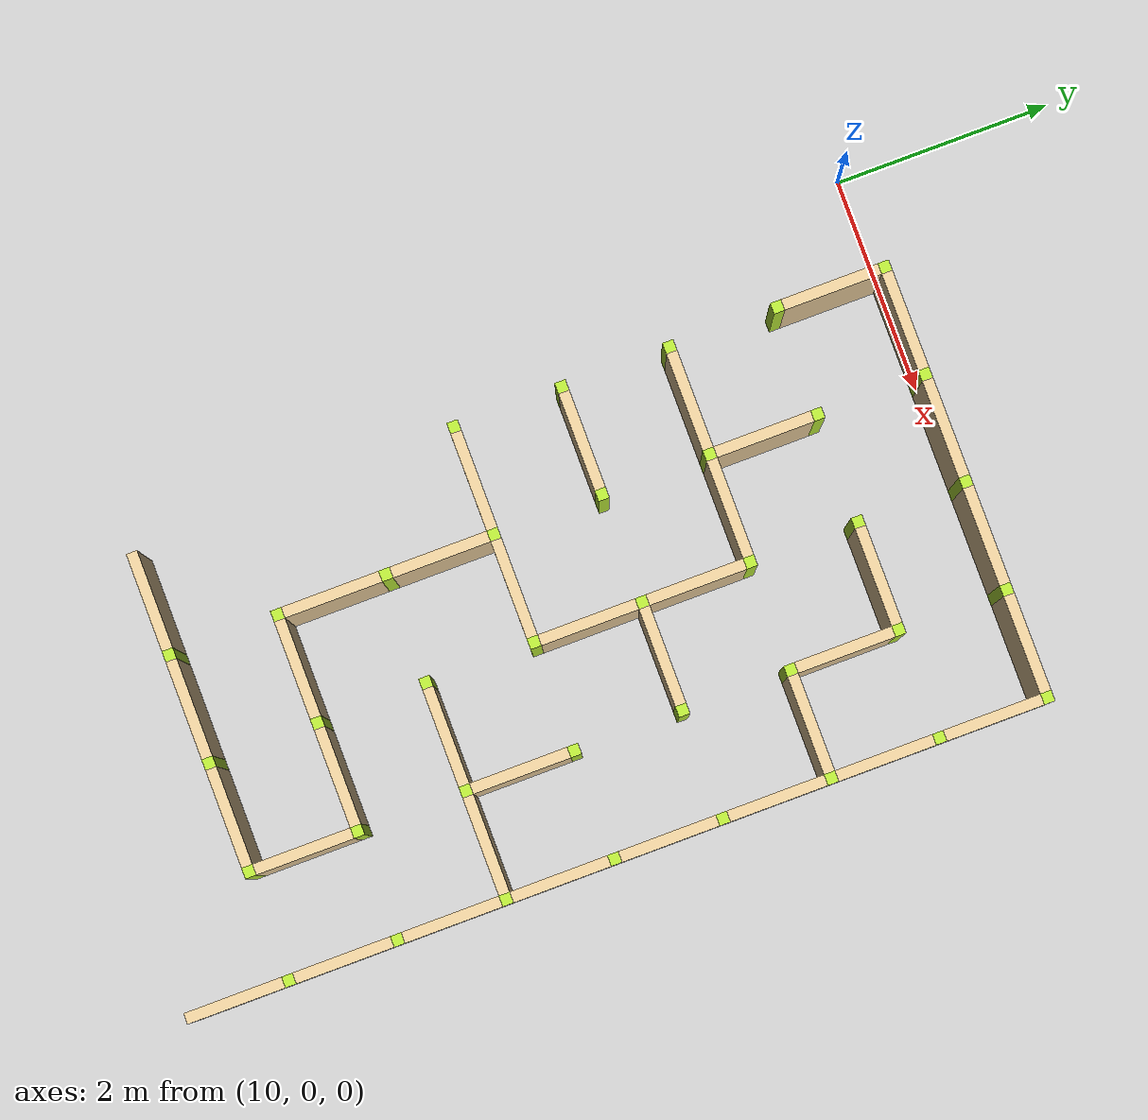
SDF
<sdf version="1.4">
 <world name="maze_world">
  <model name="ground">
   <static>true</static>
   <link name="ground_link">
    <collision name="collision1"><geometry><plane><normal>0 0 1</normal></plane></geometry></collision>
    <visual name="visual1"><geometry><plane><normal>0 0 1</normal><size>100 100</size></plane></geometry></visual>
   </link>
  </model>
  <model name="Untitled">
   <link name="Wall_11_0_h">
    <collision name="Wall_0_Collision">
     <geometry><box><size>0.9 0.1 1.5</size></box></geometry>
     <pose>0 0 0.75 0 -0 0</pose>
    </collision>
    <visual name="Wall_0_Visual">
     <pose>0 0 0.75 0 -0 0</pose>
     <geometry><box><size>0.9 0.1 1.5</size></box></geometry>
     <material>
      <script><uri>file://media/materials/scripts/gazebo.material</uri><name>Gazebo/Grey</name></script>
      <ambient>0.921569 0.807843 0.615686 1</ambient>
     </material>
     <meta><layer>0</layer></meta>
    </visual>
    <pose>11.5 0 0 0 -0 0</pose>
   </link>
   <link name="Wall_11_0_v">
    <collision name="Wall_0_Collision">
     <geometry><box><size>0.9 0.1 1.5</size></box></geometry>
     <pose>0 0 0.75 0 -0 0</pose>
    </collision>
    <visual name="Wall_0_Visual">
     <pose>0 0 0.75 0 -0 0</pose>
     <geometry><box><size>0.9 0.1 1.5</size></box></geometry>
     <material>
      <script><uri>file://media/materials/scripts/gazebo.material</uri><name>Gazebo/Grey</name></script>
      <ambient>0.921569 0.807843 0.615686 1</ambient>
     </material>
     <meta><layer>0</layer></meta>
    </visual>
    <pose>11 -0.5 0 0 -0 1.5708</pose>
   </link>
   <link name="Joint_11_0">
    <collision name="Wall_2_Collision">
     <geometry><box><size>0.1 0.1 1.5</size></box></geometry>
     <pose>0 0 0.75 0 -0 0</pose>
    </collision>
    <visual name="Wall_2_Visual">
     <pose>0 0 0.75 0 -0 0</pose>
     <geometry><box><size>0.1 0.1 1.5</size></box></geometry>
     <material>
      <script><uri>file://media/materials/scripts/gazebo.material</uri><name>Gazebo/Grey</name></script>
      <ambient>0.721569 0.907843 0.215686 1</ambient>
     </material>
     <meta><layer>0</layer></meta>
    </visual>
    <pose>11 0 0 0 -0 0</pose>
   </link>
   <link name="Wall_12_0_h">
    <collision name="Wall_0_Collision">
     <geometry><box><size>0.9 0.1 1.5</size></box></geometry>
     <pose>0 0 0.75 0 -0 0</pose>
    </collision>
    <visual name="Wall_0_Visual">
     <pose>0 0 0.75 0 -0 0</pose>
     <geometry><box><size>0.9 0.1 1.5</size></box></geometry>
     <material>
      <script><uri>file://media/materials/scripts/gazebo.material</uri><name>Gazebo/Grey</name></script>
      <ambient>0.921569 0.807843 0.615686 1</ambient>
     </material>
     <meta><layer>0</layer></meta>
    </visual>
    <pose>12.5 0 0 0 -0 0</pose>
   </link>
   <link name="Joint_12_0">
    <collision name="Wall_2_Collision">
     <geometry><box><size>0.1 0.1 1.5</size></box></geometry>
     <pose>0 0 0.75 0 -0 0</pose>
    </collision>
    <visual name="Wall_2_Visual">
     <pose>0 0 0.75 0 -0 0</pose>
     <geometry><box><size>0.1 0.1 1.5</size></box></geometry>
     <material>
      <script><uri>file://media/materials/scripts/gazebo.material</uri><name>Gazebo/Grey</name></script>
      <ambient>0.721569 0.907843 0.215686 1</ambient>
     </material>
     <meta><layer>0</layer></meta>
    </visual>
    <pose>12 0 0 0 -0 0</pose>
   </link>
   <link name="Wall_13_0_h">
    <collision name="Wall_0_Collision">
     <geometry><box><size>0.9 0.1 1.5</size></box></geometry>
     <pose>0 0 0.75 0 -0 0</pose>
    </collision>
    <visual name="Wall_0_Visual">
     <pose>0 0 0.75 0 -0 0</pose>
     <geometry><box><size>0.9 0.1 1.5</size></box></geometry>
     <material>
      <script><uri>file://media/materials/scripts/gazebo.material</uri><name>Gazebo/Grey</name></script>
      <ambient>0.921569 0.807843 0.615686 1</ambient>
     </material>
     <meta><layer>0</layer></meta>
    </visual>
    <pose>13.5 0 0 0 -0 0</pose>
   </link>
   <link name="Joint_13_0">
    <collision name="Wall_2_Collision">
     <geometry><box><size>0.1 0.1 1.5</size></box></geometry>
     <pose>0 0 0.75 0 -0 0</pose>
    </collision>
    <visual name="Wall_2_Visual">
     <pose>0 0 0.75 0 -0 0</pose>
     <geometry><box><size>0.1 0.1 1.5</size></box></geometry>
     <material>
      <script><uri>file://media/materials/scripts/gazebo.material</uri><name>Gazebo/Grey</name></script>
      <ambient>0.721569 0.907843 0.215686 1</ambient>
     </material>
     <meta><layer>0</layer></meta>
    </visual>
    <pose>13 0 0 0 -0 0</pose>
   </link>
   <link name="Wall_14_0_h">
    <collision name="Wall_0_Collision">
     <geometry><box><size>0.9 0.1 1.5</size></box></geometry>
     <pose>0 0 0.75 0 -0 0</pose>
    </collision>
    <visual name="Wall_0_Visual">
     <pose>0 0 0.75 0 -0 0</pose>
     <geometry><box><size>0.9 0.1 1.5</size></box></geometry>
     <material>
      <script><uri>file://media/materials/scripts/gazebo.material</uri><name>Gazebo/Grey</name></script>
      <ambient>0.921569 0.807843 0.615686 1</ambient>
     </material>
     <meta><layer>0</layer></meta>
    </visual>
    <pose>14.5 0 0 0 -0 0</pose>
   </link>
   <link name="Joint_14_0">
    <collision name="Wall_2_Collision">
     <geometry><box><size>0.1 0.1 1.5</size></box></geometry>
     <pose>0 0 0.75 0 -0 0</pose>
    </collision>
    <visual name="Wall_2_Visual">
     <pose>0 0 0.75 0 -0 0</pose>
     <geometry><box><size>0.1 0.1 1.5</size></box></geometry>
     <material>
      <script><uri>file://media/materials/scripts/gazebo.material</uri><name>Gazebo/Grey</name></script>
      <ambient>0.721569 0.907843 0.215686 1</ambient>
     </material>
     <meta><layer>0</layer></meta>
    </visual>
    <pose>14 0 0 0 -0 0</pose>
   </link>
   <link name="Wall_15_0_v">
    <collision name="Wall_0_Collision">
     <geometry><box><size>0.9 0.1 1.5</size></box></geometry>
     <pose>0 0 0.75 0 -0 0</pose>
    </collision>
    <visual name="Wall_0_Visual">
     <pose>0 0 0.75 0 -0 0</pose>
     <geometry><box><size>0.9 0.1 1.5</size></box></geometry>
     <material>
      <script><uri>file://media/materials/scripts/gazebo.material</uri><name>Gazebo/Grey</name></script>
      <ambient>0.921569 0.807843 0.615686 1</ambient>
     </material>
     <meta><layer>0</layer></meta>
    </visual>
    <pose>15 -0.5 0 0 -0 1.5708</pose>
   </link>
   <link name="Joint_15_0">
    <collision name="Wall_2_Collision">
     <geometry><box><size>0.1 0.1 1.5</size></box></geometry>
     <pose>0 0 0.75 0 -0 0</pose>
    </collision>
    <visual name="Wall_2_Visual">
     <pose>0 0 0.75 0 -0 0</pose>
     <geometry><box><size>0.1 0.1 1.5</size></box></geometry>
     <material>
      <script><uri>file://media/materials/scripts/gazebo.material</uri><name>Gazebo/Grey</name></script>
      <ambient>0.721569 0.907843 0.215686 1</ambient>
     </material>
     <meta><layer>0</layer></meta>
    </visual>
    <pose>15 0 0 0 -0 0</pose>
   </link>
   <link name="Joint_11_-1">
    <collision name="Wall_2_Collision">
     <geometry><box><size>0.1 0.1 1.5</size></box></geometry>
     <pose>0 0 0.75 0 -0 0</pose>
    </collision>
    <visual name="Wall_2_Visual">
     <pose>0 0 0.75 0 -0 0</pose>
     <geometry><box><size>0.1 0.1 1.5</size></box></geometry>
     <material>
      <script><uri>file://media/materials/scripts/gazebo.material</uri><name>Gazebo/Grey</name></script>
      <ambient>0.721569 0.907843 0.215686 1</ambient>
     </material>
     <meta><layer>0</layer></meta>
    </visual>
    <pose>11 -1 0 0 -0 0</pose>
   </link>
   <link name="Wall_12_1_v">
    <collision name="Wall_0_Collision">
     <geometry><box><size>0.9 0.1 1.5</size></box></geometry>
     <pose>0 0 0.75 0 -0 0</pose>
    </collision>
    <visual name="Wall_0_Visual">
     <pose>0 0 0.75 0 -0 0</pose>
     <geometry><box><size>0.9 0.1 1.5</size></box></geometry>
     <material>
      <script><uri>file://media/materials/scripts/gazebo.material</uri><name>Gazebo/Grey</name></script>
      <ambient>0.921569 0.807843 0.615686 1</ambient>
     </material>
     <meta><layer>0</layer></meta>
    </visual>
    <pose>12 -1.5 0 0 -0 1.5708</pose>
   </link>
   <link name="Joint_12_-1">
    <collision name="Wall_2_Collision">
     <geometry><box><size>0.1 0.1 1.5</size></box></geometry>
     <pose>0 0 0.75 0 -0 0</pose>
    </collision>
    <visual name="Wall_2_Visual">
     <pose>0 0 0.75 0 -0 0</pose>
     <geometry><box><size>0.1 0.1 1.5</size></box></geometry>
     <material>
      <script><uri>file://media/materials/scripts/gazebo.material</uri><name>Gazebo/Grey</name></script>
      <ambient>0.721569 0.907843 0.215686 1</ambient>
     </material>
     <meta><layer>0</layer></meta>
    </visual>
    <pose>12 -1 0 0 -0 0</pose>
   </link>
   <link name="Wall_13_1_h">
    <collision name="Wall_0_Collision">
     <geometry><box><size>0.9 0.1 1.5</size></box></geometry>
     <pose>0 0 0.75 0 -0 0</pose>
    </collision>
    <visual name="Wall_0_Visual">
     <pose>0 0 0.75 0 -0 0</pose>
     <geometry><box><size>0.9 0.1 1.5</size></box></geometry>
     <material>
      <script><uri>file://media/materials/scripts/gazebo.material</uri><name>Gazebo/Grey</name></script>
      <ambient>0.921569 0.807843 0.615686 1</ambient>
     </material>
     <meta><layer>0</layer></meta>
    </visual>
    <pose>13.5 -1 0 0 -0 0</pose>
   </link>
   <link name="Joint_13_-1">
    <collision name="Wall_2_Collision">
     <geometry><box><size>0.1 0.1 1.5</size></box></geometry>
     <pose>0 0 0.75 0 -0 0</pose>
    </collision>
    <visual name="Wall_2_Visual">
     <pose>0 0 0.75 0 -0 0</pose>
     <geometry><box><size>0.1 0.1 1.5</size></box></geometry>
     <material>
      <script><uri>file://media/materials/scripts/gazebo.material</uri><name>Gazebo/Grey</name></script>
      <ambient>0.721569 0.907843 0.215686 1</ambient>
     </material>
     <meta><layer>0</layer></meta>
    </visual>
    <pose>13 -1 0 0 -0 0</pose>
   </link>
   <link name="Wall_14_1_v">
    <collision name="Wall_0_Collision">
     <geometry><box><size>0.9 0.1 1.5</size></box></geometry>
     <pose>0 0 0.75 0 -0 0</pose>
    </collision>
    <visual name="Wall_0_Visual">
     <pose>0 0 0.75 0 -0 0</pose>
     <geometry><box><size>0.9 0.1 1.5</size></box></geometry>
     <material>
      <script><uri>file://media/materials/scripts/gazebo.material</uri><name>Gazebo/Grey</name></script>
      <ambient>0.921569 0.807843 0.615686 1</ambient>
     </material>
     <meta><layer>0</layer></meta>
    </visual>
    <pose>14 -1.5 0 0 -0 1.5708</pose>
   </link>
   <link name="Joint_14_-1">
    <collision name="Wall_2_Collision">
     <geometry><box><size>0.1 0.1 1.5</size></box></geometry>
     <pose>0 0 0.75 0 -0 0</pose>
    </collision>
    <visual name="Wall_2_Visual">
     <pose>0 0 0.75 0 -0 0</pose>
     <geometry><box><size>0.1 0.1 1.5</size></box></geometry>
     <material>
      <script><uri>file://media/materials/scripts/gazebo.material</uri><name>Gazebo/Grey</name></script>
      <ambient>0.721569 0.907843 0.215686 1</ambient>
     </material>
     <meta><layer>0</layer></meta>
    </visual>
    <pose>14 -1 0 0 -0 0</pose>
   </link>
   <link name="Wall_15_1_v">
    <collision name="Wall_0_Collision">
     <geometry><box><size>0.9 0.1 1.5</size></box></geometry>
     <pose>0 0 0.75 0 -0 0</pose>
    </collision>
    <visual name="Wall_0_Visual">
     <pose>0 0 0.75 0 -0 0</pose>
     <geometry><box><size>0.9 0.1 1.5</size></box></geometry>
     <material>
      <script><uri>file://media/materials/scripts/gazebo.material</uri><name>Gazebo/Grey</name></script>
      <ambient>0.921569 0.807843 0.615686 1</ambient>
     </material>
     <meta><layer>0</layer></meta>
    </visual>
    <pose>15 -1.5 0 0 -0 1.5708</pose>
   </link>
   <link name="Joint_15_-1">
    <collision name="Wall_2_Collision">
     <geometry><box><size>0.1 0.1 1.5</size></box></geometry>
     <pose>0 0 0.75 0 -0 0</pose>
    </collision>
    <visual name="Wall_2_Visual">
     <pose>0 0 0.75 0 -0 0</pose>
     <geometry><box><size>0.1 0.1 1.5</size></box></geometry>
     <material>
      <script><uri>file://media/materials/scripts/gazebo.material</uri><name>Gazebo/Grey</name></script>
      <ambient>0.721569 0.907843 0.215686 1</ambient>
     </material>
     <meta><layer>0</layer></meta>
    </visual>
    <pose>15 -1 0 0 -0 0</pose>
   </link>
   <link name="Wall_11_2_h">
    <collision name="Wall_0_Collision">
     <geometry><box><size>0.9 0.1 1.5</size></box></geometry>
     <pose>0 0 0.75 0 -0 0</pose>
    </collision>
    <visual name="Wall_0_Visual">
     <pose>0 0 0.75 0 -0 0</pose>
     <geometry><box><size>0.9 0.1 1.5</size></box></geometry>
     <material>
      <script><uri>file://media/materials/scripts/gazebo.material</uri><name>Gazebo/Grey</name></script>
      <ambient>0.921569 0.807843 0.615686 1</ambient>
     </material>
     <meta><layer>0</layer></meta>
    </visual>
    <pose>11.5 -2 0 0 -0 0</pose>
   </link>
   <link name="Joint_11_-2">
    <collision name="Wall_2_Collision">
     <geometry><box><size>0.1 0.1 1.5</size></box></geometry>
     <pose>0 0 0.75 0 -0 0</pose>
    </collision>
    <visual name="Wall_2_Visual">
     <pose>0 0 0.75 0 -0 0</pose>
     <geometry><box><size>0.1 0.1 1.5</size></box></geometry>
     <material>
      <script><uri>file://media/materials/scripts/gazebo.material</uri><name>Gazebo/Grey</name></script>
      <ambient>0.721569 0.907843 0.215686 1</ambient>
     </material>
     <meta><layer>0</layer></meta>
    </visual>
    <pose>11 -2 0 0 -0 0</pose>
   </link>
   <link name="Wall_12_2_h">
    <collision name="Wall_0_Collision">
     <geometry><box><size>0.9 0.1 1.5</size></box></geometry>
     <pose>0 0 0.75 0 -0 0</pose>
    </collision>
    <visual name="Wall_0_Visual">
     <pose>0 0 0.75 0 -0 0</pose>
     <geometry><box><size>0.9 0.1 1.5</size></box></geometry>
     <material>
      <script><uri>file://media/materials/scripts/gazebo.material</uri><name>Gazebo/Grey</name></script>
      <ambient>0.921569 0.807843 0.615686 1</ambient>
     </material>
     <meta><layer>0</layer></meta>
    </visual>
    <pose>12.5 -2 0 0 -0 0</pose>
   </link>
   <link name="Joint_12_-2">
    <collision name="Wall_2_Collision">
     <geometry><box><size>0.1 0.1 1.5</size></box></geometry>
     <pose>0 0 0.75 0 -0 0</pose>
    </collision>
    <visual name="Wall_2_Visual">
     <pose>0 0 0.75 0 -0 0</pose>
     <geometry><box><size>0.1 0.1 1.5</size></box></geometry>
     <material>
      <script><uri>file://media/materials/scripts/gazebo.material</uri><name>Gazebo/Grey</name></script>
      <ambient>0.721569 0.907843 0.215686 1</ambient>
     </material>
     <meta><layer>0</layer></meta>
    </visual>
    <pose>12 -2 0 0 -0 0</pose>
   </link>
   <link name="Wall_13_2_v">
    <collision name="Wall_0_Collision">
     <geometry><box><size>0.9 0.1 1.5</size></box></geometry>
     <pose>0 0 0.75 0 -0 0</pose>
    </collision>
    <visual name="Wall_0_Visual">
     <pose>0 0 0.75 0 -0 0</pose>
     <geometry><box><size>0.9 0.1 1.5</size></box></geometry>
     <material>
      <script><uri>file://media/materials/scripts/gazebo.material</uri><name>Gazebo/Grey</name></script>
      <ambient>0.921569 0.807843 0.615686 1</ambient>
     </material>
     <meta><layer>0</layer></meta>
    </visual>
    <pose>13 -2.5 0 0 -0 1.5708</pose>
   </link>
   <link name="Joint_13_-2">
    <collision name="Wall_2_Collision">
     <geometry><box><size>0.1 0.1 1.5</size></box></geometry>
     <pose>0 0 0.75 0 -0 0</pose>
    </collision>
    <visual name="Wall_2_Visual">
     <pose>0 0 0.75 0 -0 0</pose>
     <geometry><box><size>0.1 0.1 1.5</size></box></geometry>
     <material>
      <script><uri>file://media/materials/scripts/gazebo.material</uri><name>Gazebo/Grey</name></script>
      <ambient>0.721569 0.907843 0.215686 1</ambient>
     </material>
     <meta><layer>0</layer></meta>
    </visual>
    <pose>13 -2 0 0 -0 0</pose>
   </link>
   <link name="Wall_14_2_h">
    <collision name="Wall_0_Collision">
     <geometry><box><size>0.9 0.1 1.5</size></box></geometry>
     <pose>0 0 0.75 0 -0 0</pose>
    </collision>
    <visual name="Wall_0_Visual">
     <pose>0 0 0.75 0 -0 0</pose>
     <geometry><box><size>0.9 0.1 1.5</size></box></geometry>
     <material>
      <script><uri>file://media/materials/scripts/gazebo.material</uri><name>Gazebo/Grey</name></script>
      <ambient>0.921569 0.807843 0.615686 1</ambient>
     </material>
     <meta><layer>0</layer></meta>
    </visual>
    <pose>14.5 -2 0 0 -0 0</pose>
   </link>
   <link name="Joint_14_-2">
    <collision name="Wall_2_Collision">
     <geometry><box><size>0.1 0.1 1.5</size></box></geometry>
     <pose>0 0 0.75 0 -0 0</pose>
    </collision>
    <visual name="Wall_2_Visual">
     <pose>0 0 0.75 0 -0 0</pose>
     <geometry><box><size>0.1 0.1 1.5</size></box></geometry>
     <material>
      <script><uri>file://media/materials/scripts/gazebo.material</uri><name>Gazebo/Grey</name></script>
      <ambient>0.721569 0.907843 0.215686 1</ambient>
     </material>
     <meta><layer>0</layer></meta>
    </visual>
    <pose>14 -2 0 0 -0 0</pose>
   </link>
   <link name="Wall_15_2_v">
    <collision name="Wall_0_Collision">
     <geometry><box><size>0.9 0.1 1.5</size></box></geometry>
     <pose>0 0 0.75 0 -0 0</pose>
    </collision>
    <visual name="Wall_0_Visual">
     <pose>0 0 0.75 0 -0 0</pose>
     <geometry><box><size>0.9 0.1 1.5</size></box></geometry>
     <material>
      <script><uri>file://media/materials/scripts/gazebo.material</uri><name>Gazebo/Grey</name></script>
      <ambient>0.921569 0.807843 0.615686 1</ambient>
     </material>
     <meta><layer>0</layer></meta>
    </visual>
    <pose>15 -2.5 0 0 -0 1.5708</pose>
   </link>
   <link name="Joint_15_-2">
    <collision name="Wall_2_Collision">
     <geometry><box><size>0.1 0.1 1.5</size></box></geometry>
     <pose>0 0 0.75 0 -0 0</pose>
    </collision>
    <visual name="Wall_2_Visual">
     <pose>0 0 0.75 0 -0 0</pose>
     <geometry><box><size>0.1 0.1 1.5</size></box></geometry>
     <material>
      <script><uri>file://media/materials/scripts/gazebo.material</uri><name>Gazebo/Grey</name></script>
      <ambient>0.721569 0.907843 0.215686 1</ambient>
     </material>
     <meta><layer>0</layer></meta>
    </visual>
    <pose>15 -2 0 0 -0 0</pose>
   </link>
   <link name="Wall_11_3_h">
    <collision name="Wall_0_Collision">
     <geometry><box><size>0.9 0.1 1.5</size></box></geometry>
     <pose>0 0 0.75 0 -0 0</pose>
    </collision>
    <visual name="Wall_0_Visual">
     <pose>0 0 0.75 0 -0 0</pose>
     <geometry><box><size>0.9 0.1 1.5</size></box></geometry>
     <material>
      <script><uri>file://media/materials/scripts/gazebo.material</uri><name>Gazebo/Grey</name></script>
      <ambient>0.921569 0.807843 0.615686 1</ambient>
     </material>
     <meta><layer>0</layer></meta>
    </visual>
    <pose>11.5 -3 0 0 -0 0</pose>
   </link>
   <link name="Joint_11_-3">
    <collision name="Wall_2_Collision">
     <geometry><box><size>0.1 0.1 1.5</size></box></geometry>
     <pose>0 0 0.75 0 -0 0</pose>
    </collision>
    <visual name="Wall_2_Visual">
     <pose>0 0 0.75 0 -0 0</pose>
     <geometry><box><size>0.1 0.1 1.5</size></box></geometry>
     <material>
      <script><uri>file://media/materials/scripts/gazebo.material</uri><name>Gazebo/Grey</name></script>
      <ambient>0.721569 0.907843 0.215686 1</ambient>
     </material>
     <meta><layer>0</layer></meta>
    </visual>
    <pose>11 -3 0 0 -0 0</pose>
   </link>
   <link name="Joint_12_-3">
    <collision name="Wall_2_Collision">
     <geometry><box><size>0.1 0.1 1.5</size></box></geometry>
     <pose>0 0 0.75 0 -0 0</pose>
    </collision>
    <visual name="Wall_2_Visual">
     <pose>0 0 0.75 0 -0 0</pose>
     <geometry><box><size>0.1 0.1 1.5</size></box></geometry>
     <material>
      <script><uri>file://media/materials/scripts/gazebo.material</uri><name>Gazebo/Grey</name></script>
      <ambient>0.721569 0.907843 0.215686 1</ambient>
     </material>
     <meta><layer>0</layer></meta>
    </visual>
    <pose>12 -3 0 0 -0 0</pose>
   </link>
   <link name="Wall_13_3_h">
    <collision name="Wall_0_Collision">
     <geometry><box><size>0.9 0.1 1.5</size></box></geometry>
     <pose>0 0 0.75 0 -0 0</pose>
    </collision>
    <visual name="Wall_0_Visual">
     <pose>0 0 0.75 0 -0 0</pose>
     <geometry><box><size>0.9 0.1 1.5</size></box></geometry>
     <material>
      <script><uri>file://media/materials/scripts/gazebo.material</uri><name>Gazebo/Grey</name></script>
      <ambient>0.921569 0.807843 0.615686 1</ambient>
     </material>
     <meta><layer>0</layer></meta>
    </visual>
    <pose>13.5 -3 0 0 -0 0</pose>
   </link>
   <link name="Wall_13_3_v">
    <collision name="Wall_0_Collision">
     <geometry><box><size>0.9 0.1 1.5</size></box></geometry>
     <pose>0 0 0.75 0 -0 0</pose>
    </collision>
    <visual name="Wall_0_Visual">
     <pose>0 0 0.75 0 -0 0</pose>
     <geometry><box><size>0.9 0.1 1.5</size></box></geometry>
     <material>
      <script><uri>file://media/materials/scripts/gazebo.material</uri><name>Gazebo/Grey</name></script>
      <ambient>0.921569 0.807843 0.615686 1</ambient>
     </material>
     <meta><layer>0</layer></meta>
    </visual>
    <pose>13 -3.5 0 0 -0 1.5708</pose>
   </link>
   <link name="Joint_13_-3">
    <collision name="Wall_2_Collision">
     <geometry><box><size>0.1 0.1 1.5</size></box></geometry>
     <pose>0 0 0.75 0 -0 0</pose>
    </collision>
    <visual name="Wall_2_Visual">
     <pose>0 0 0.75 0 -0 0</pose>
     <geometry><box><size>0.1 0.1 1.5</size></box></geometry>
     <material>
      <script><uri>file://media/materials/scripts/gazebo.material</uri><name>Gazebo/Grey</name></script>
      <ambient>0.721569 0.907843 0.215686 1</ambient>
     </material>
     <meta><layer>0</layer></meta>
    </visual>
    <pose>13 -3 0 0 -0 0</pose>
   </link>
   <link name="Joint_14_-3">
    <collision name="Wall_2_Collision">
     <geometry><box><size>0.1 0.1 1.5</size></box></geometry>
     <pose>0 0 0.75 0 -0 0</pose>
    </collision>
    <visual name="Wall_2_Visual">
     <pose>0 0 0.75 0 -0 0</pose>
     <geometry><box><size>0.1 0.1 1.5</size></box></geometry>
     <material>
      <script><uri>file://media/materials/scripts/gazebo.material</uri><name>Gazebo/Grey</name></script>
      <ambient>0.721569 0.907843 0.215686 1</ambient>
     </material>
     <meta><layer>0</layer></meta>
    </visual>
    <pose>14 -3 0 0 -0 0</pose>
   </link>
   <link name="Wall_15_3_v">
    <collision name="Wall_0_Collision">
     <geometry><box><size>0.9 0.1 1.5</size></box></geometry>
     <pose>0 0 0.75 0 -0 0</pose>
    </collision>
    <visual name="Wall_0_Visual">
     <pose>0 0 0.75 0 -0 0</pose>
     <geometry><box><size>0.9 0.1 1.5</size></box></geometry>
     <material>
      <script><uri>file://media/materials/scripts/gazebo.material</uri><name>Gazebo/Grey</name></script>
      <ambient>0.921569 0.807843 0.615686 1</ambient>
     </material>
     <meta><layer>0</layer></meta>
    </visual>
    <pose>15 -3.5 0 0 -0 1.5708</pose>
   </link>
   <link name="Joint_15_-3">
    <collision name="Wall_2_Collision">
     <geometry><box><size>0.1 0.1 1.5</size></box></geometry>
     <pose>0 0 0.75 0 -0 0</pose>
    </collision>
    <visual name="Wall_2_Visual">
     <pose>0 0 0.75 0 -0 0</pose>
     <geometry><box><size>0.1 0.1 1.5</size></box></geometry>
     <material>
      <script><uri>file://media/materials/scripts/gazebo.material</uri><name>Gazebo/Grey</name></script>
      <ambient>0.721569 0.907843 0.215686 1</ambient>
     </material>
     <meta><layer>0</layer></meta>
    </visual>
    <pose>15 -3 0 0 -0 0</pose>
   </link>
   <link name="Wall_11_4_h">
    <collision name="Wall_0_Collision">
     <geometry><box><size>0.9 0.1 1.5</size></box></geometry>
     <pose>0 0 0.75 0 -0 0</pose>
    </collision>
    <visual name="Wall_0_Visual">
     <pose>0 0 0.75 0 -0 0</pose>
     <geometry><box><size>0.9 0.1 1.5</size></box></geometry>
     <material>
      <script><uri>file://media/materials/scripts/gazebo.material</uri><name>Gazebo/Grey</name></script>
      <ambient>0.921569 0.807843 0.615686 1</ambient>
     </material>
     <meta><layer>0</layer></meta>
    </visual>
    <pose>11.5 -4 0 0 -0 0</pose>
   </link>
   <link name="Joint_11_-4">
    <collision name="Wall_2_Collision">
     <geometry><box><size>0.1 0.1 1.5</size></box></geometry>
     <pose>0 0 0.75 0 -0 0</pose>
    </collision>
    <visual name="Wall_2_Visual">
     <pose>0 0 0.75 0 -0 0</pose>
     <geometry><box><size>0.1 0.1 1.5</size></box></geometry>
     <material>
      <script><uri>file://media/materials/scripts/gazebo.material</uri><name>Gazebo/Grey</name></script>
      <ambient>0.721569 0.907843 0.215686 1</ambient>
     </material>
     <meta><layer>0</layer></meta>
    </visual>
    <pose>11 -4 0 0 -0 0</pose>
   </link>
   <link name="Wall_12_4_h">
    <collision name="Wall_0_Collision">
     <geometry><box><size>0.9 0.1 1.5</size></box></geometry>
     <pose>0 0 0.75 0 -0 0</pose>
    </collision>
    <visual name="Wall_0_Visual">
     <pose>0 0 0.75 0 -0 0</pose>
     <geometry><box><size>0.9 0.1 1.5</size></box></geometry>
     <material>
      <script><uri>file://media/materials/scripts/gazebo.material</uri><name>Gazebo/Grey</name></script>
      <ambient>0.921569 0.807843 0.615686 1</ambient>
     </material>
     <meta><layer>0</layer></meta>
    </visual>
    <pose>12.5 -4 0 0 -0 0</pose>
   </link>
   <link name="Wall_12_4_v">
    <collision name="Wall_0_Collision">
     <geometry><box><size>0.9 0.1 1.5</size></box></geometry>
     <pose>0 0 0.75 0 -0 0</pose>
    </collision>
    <visual name="Wall_0_Visual">
     <pose>0 0 0.75 0 -0 0</pose>
     <geometry><box><size>0.9 0.1 1.5</size></box></geometry>
     <material>
      <script><uri>file://media/materials/scripts/gazebo.material</uri><name>Gazebo/Grey</name></script>
      <ambient>0.921569 0.807843 0.615686 1</ambient>
     </material>
     <meta><layer>0</layer></meta>
    </visual>
    <pose>12 -4.5 0 0 -0 1.5708</pose>
   </link>
   <link name="Joint_12_-4">
    <collision name="Wall_2_Collision">
     <geometry><box><size>0.1 0.1 1.5</size></box></geometry>
     <pose>0 0 0.75 0 -0 0</pose>
    </collision>
    <visual name="Wall_2_Visual">
     <pose>0 0 0.75 0 -0 0</pose>
     <geometry><box><size>0.1 0.1 1.5</size></box></geometry>
     <material>
      <script><uri>file://media/materials/scripts/gazebo.material</uri><name>Gazebo/Grey</name></script>
      <ambient>0.721569 0.907843 0.215686 1</ambient>
     </material>
     <meta><layer>0</layer></meta>
    </visual>
    <pose>12 -4 0 0 -0 0</pose>
   </link>
   <link name="Joint_13_-4">
    <collision name="Wall_2_Collision">
     <geometry><box><size>0.1 0.1 1.5</size></box></geometry>
     <pose>0 0 0.75 0 -0 0</pose>
    </collision>
    <visual name="Wall_2_Visual">
     <pose>0 0 0.75 0 -0 0</pose>
     <geometry><box><size>0.1 0.1 1.5</size></box></geometry>
     <material>
      <script><uri>file://media/materials/scripts/gazebo.material</uri><name>Gazebo/Grey</name></script>
      <ambient>0.721569 0.907843 0.215686 1</ambient>
     </material>
     <meta><layer>0</layer></meta>
    </visual>
    <pose>13 -4 0 0 -0 0</pose>
   </link>
   <link name="Wall_14_4_v">
    <collision name="Wall_0_Collision">
     <geometry><box><size>0.9 0.1 1.5</size></box></geometry>
     <pose>0 0 0.75 0 -0 0</pose>
    </collision>
    <visual name="Wall_0_Visual">
     <pose>0 0 0.75 0 -0 0</pose>
     <geometry><box><size>0.9 0.1 1.5</size></box></geometry>
     <material>
      <script><uri>file://media/materials/scripts/gazebo.material</uri><name>Gazebo/Grey</name></script>
      <ambient>0.921569 0.807843 0.615686 1</ambient>
     </material>
     <meta><layer>0</layer></meta>
    </visual>
    <pose>14 -4.5 0 0 -0 1.5708</pose>
   </link>
   <link name="Joint_14_-4">
    <collision name="Wall_2_Collision">
     <geometry><box><size>0.1 0.1 1.5</size></box></geometry>
     <pose>0 0 0.75 0 -0 0</pose>
    </collision>
    <visual name="Wall_2_Visual">
     <pose>0 0 0.75 0 -0 0</pose>
     <geometry><box><size>0.1 0.1 1.5</size></box></geometry>
     <material>
      <script><uri>file://media/materials/scripts/gazebo.material</uri><name>Gazebo/Grey</name></script>
      <ambient>0.721569 0.907843 0.215686 1</ambient>
     </material>
     <meta><layer>0</layer></meta>
    </visual>
    <pose>14 -4 0 0 -0 0</pose>
   </link>
   <link name="Wall_15_4_v">
    <collision name="Wall_0_Collision">
     <geometry><box><size>0.9 0.1 1.5</size></box></geometry>
     <pose>0 0 0.75 0 -0 0</pose>
    </collision>
    <visual name="Wall_0_Visual">
     <pose>0 0 0.75 0 -0 0</pose>
     <geometry><box><size>0.9 0.1 1.5</size></box></geometry>
     <material>
      <script><uri>file://media/materials/scripts/gazebo.material</uri><name>Gazebo/Grey</name></script>
      <ambient>0.921569 0.807843 0.615686 1</ambient>
     </material>
     <meta><layer>0</layer></meta>
    </visual>
    <pose>15 -4.5 0 0 -0 1.5708</pose>
   </link>
   <link name="Joint_15_-4">
    <collision name="Wall_2_Collision">
     <geometry><box><size>0.1 0.1 1.5</size></box></geometry>
     <pose>0 0 0.75 0 -0 0</pose>
    </collision>
    <visual name="Wall_2_Visual">
     <pose>0 0 0.75 0 -0 0</pose>
     <geometry><box><size>0.1 0.1 1.5</size></box></geometry>
     <material>
      <script><uri>file://media/materials/scripts/gazebo.material</uri><name>Gazebo/Grey</name></script>
      <ambient>0.721569 0.907843 0.215686 1</ambient>
     </material>
     <meta><layer>0</layer></meta>
    </visual>
    <pose>15 -4 0 0 -0 0</pose>
   </link>
   <link name="Wall_12_5_v">
    <collision name="Wall_0_Collision">
     <geometry><box><size>0.9 0.1 1.5</size></box></geometry>
     <pose>0 0 0.75 0 -0 0</pose>
    </collision>
    <visual name="Wall_0_Visual">
     <pose>0 0 0.75 0 -0 0</pose>
     <geometry><box><size>0.9 0.1 1.5</size></box></geometry>
     <material>
      <script><uri>file://media/materials/scripts/gazebo.material</uri><name>Gazebo/Grey</name></script>
      <ambient>0.921569 0.807843 0.615686 1</ambient>
     </material>
     <meta><layer>0</layer></meta>
    </visual>
    <pose>12 -5.5 0 0 -0 1.5708</pose>
   </link>
   <link name="Joint_12_-5">
    <collision name="Wall_2_Collision">
     <geometry><box><size>0.1 0.1 1.5</size></box></geometry>
     <pose>0 0 0.75 0 -0 0</pose>
    </collision>
    <visual name="Wall_2_Visual">
     <pose>0 0 0.75 0 -0 0</pose>
     <geometry><box><size>0.1 0.1 1.5</size></box></geometry>
     <material>
      <script><uri>file://media/materials/scripts/gazebo.material</uri><name>Gazebo/Grey</name></script>
      <ambient>0.721569 0.907843 0.215686 1</ambient>
     </material>
     <meta><layer>0</layer></meta>
    </visual>
    <pose>12 -5 0 0 -0 0</pose>
   </link>
   <link name="Wall_13_5_h">
    <collision name="Wall_0_Collision">
     <geometry><box><size>0.9 0.1 1.5</size></box></geometry>
     <pose>0 0 0.75 0 -0 0</pose>
    </collision>
    <visual name="Wall_0_Visual">
     <pose>0 0 0.75 0 -0 0</pose>
     <geometry><box><size>0.9 0.1 1.5</size></box></geometry>
     <material>
      <script><uri>file://media/materials/scripts/gazebo.material</uri><name>Gazebo/Grey</name></script>
      <ambient>0.921569 0.807843 0.615686 1</ambient>
     </material>
     <meta><layer>0</layer></meta>
    </visual>
    <pose>13.5 -5 0 0 -0 0</pose>
   </link>
   <link name="Joint_13_-5">
    <collision name="Wall_2_Collision">
     <geometry><box><size>0.1 0.1 1.5</size></box></geometry>
     <pose>0 0 0.75 0 -0 0</pose>
    </collision>
    <visual name="Wall_2_Visual">
     <pose>0 0 0.75 0 -0 0</pose>
     <geometry><box><size>0.1 0.1 1.5</size></box></geometry>
     <material>
      <script><uri>file://media/materials/scripts/gazebo.material</uri><name>Gazebo/Grey</name></script>
      <ambient>0.721569 0.907843 0.215686 1</ambient>
     </material>
     <meta><layer>0</layer></meta>
    </visual>
    <pose>13 -5 0 0 -0 0</pose>
   </link>
   <link name="Wall_14_5_h">
    <collision name="Wall_0_Collision">
     <geometry><box><size>0.9 0.1 1.5</size></box></geometry>
     <pose>0 0 0.75 0 -0 0</pose>
    </collision>
    <visual name="Wall_0_Visual">
     <pose>0 0 0.75 0 -0 0</pose>
     <geometry><box><size>0.9 0.1 1.5</size></box></geometry>
     <material>
      <script><uri>file://media/materials/scripts/gazebo.material</uri><name>Gazebo/Grey</name></script>
      <ambient>0.921569 0.807843 0.615686 1</ambient>
     </material>
     <meta><layer>0</layer></meta>
    </visual>
    <pose>14.5 -5 0 0 -0 0</pose>
   </link>
   <link name="Joint_14_-5">
    <collision name="Wall_2_Collision">
     <geometry><box><size>0.1 0.1 1.5</size></box></geometry>
     <pose>0 0 0.75 0 -0 0</pose>
    </collision>
    <visual name="Wall_2_Visual">
     <pose>0 0 0.75 0 -0 0</pose>
     <geometry><box><size>0.1 0.1 1.5</size></box></geometry>
     <material>
      <script><uri>file://media/materials/scripts/gazebo.material</uri><name>Gazebo/Grey</name></script>
      <ambient>0.721569 0.907843 0.215686 1</ambient>
     </material>
     <meta><layer>0</layer></meta>
    </visual>
    <pose>14 -5 0 0 -0 0</pose>
   </link>
   <link name="Wall_15_5_v">
    <collision name="Wall_0_Collision">
     <geometry><box><size>0.9 0.1 1.5</size></box></geometry>
     <pose>0 0 0.75 0 -0 0</pose>
    </collision>
    <visual name="Wall_0_Visual">
     <pose>0 0 0.75 0 -0 0</pose>
     <geometry><box><size>0.9 0.1 1.5</size></box></geometry>
     <material>
      <script><uri>file://media/materials/scripts/gazebo.material</uri><name>Gazebo/Grey</name></script>
      <ambient>0.921569 0.807843 0.615686 1</ambient>
     </material>
     <meta><layer>0</layer></meta>
    </visual>
    <pose>15 -5.5 0 0 -0 1.5708</pose>
   </link>
   <link name="Joint_15_-5">
    <collision name="Wall_2_Collision">
     <geometry><box><size>0.1 0.1 1.5</size></box></geometry>
     <pose>0 0 0.75 0 -0 0</pose>
    </collision>
    <visual name="Wall_2_Visual">
     <pose>0 0 0.75 0 -0 0</pose>
     <geometry><box><size>0.1 0.1 1.5</size></box></geometry>
     <material>
      <script><uri>file://media/materials/scripts/gazebo.material</uri><name>Gazebo/Grey</name></script>
      <ambient>0.721569 0.907843 0.215686 1</ambient>
     </material>
     <meta><layer>0</layer></meta>
    </visual>
    <pose>15 -5 0 0 -0 0</pose>
   </link>
   <link name="Wall_12_6_h">
    <collision name="Wall_0_Collision">
     <geometry><box><size>0.9 0.1 1.5</size></box></geometry>
     <pose>0 0 0.75 0 -0 0</pose>
    </collision>
    <visual name="Wall_0_Visual">
     <pose>0 0 0.75 0 -0 0</pose>
     <geometry><box><size>0.9 0.1 1.5</size></box></geometry>
     <material>
      <script><uri>file://media/materials/scripts/gazebo.material</uri><name>Gazebo/Grey</name></script>
      <ambient>0.921569 0.807843 0.615686 1</ambient>
     </material>
     <meta><layer>0</layer></meta>
    </visual>
    <pose>12.5 -6 0 0 -0 0</pose>
   </link>
   <link name="Joint_12_-6">
    <collision name="Wall_2_Collision">
     <geometry><box><size>0.1 0.1 1.5</size></box></geometry>
     <pose>0 0 0.75 0 -0 0</pose>
    </collision>
    <visual name="Wall_2_Visual">
     <pose>0 0 0.75 0 -0 0</pose>
     <geometry><box><size>0.1 0.1 1.5</size></box></geometry>
     <material>
      <script><uri>file://media/materials/scripts/gazebo.material</uri><name>Gazebo/Grey</name></script>
      <ambient>0.721569 0.907843 0.215686 1</ambient>
     </material>
     <meta><layer>0</layer></meta>
    </visual>
    <pose>12 -6 0 0 -0 0</pose>
   </link>
   <link name="Wall_13_6_h">
    <collision name="Wall_0_Collision">
     <geometry><box><size>0.9 0.1 1.5</size></box></geometry>
     <pose>0 0 0.75 0 -0 0</pose>
    </collision>
    <visual name="Wall_0_Visual">
     <pose>0 0 0.75 0 -0 0</pose>
     <geometry><box><size>0.9 0.1 1.5</size></box></geometry>
     <material>
      <script><uri>file://media/materials/scripts/gazebo.material</uri><name>Gazebo/Grey</name></script>
      <ambient>0.921569 0.807843 0.615686 1</ambient>
     </material>
     <meta><layer>0</layer></meta>
    </visual>
    <pose>13.5 -6 0 0 -0 0</pose>
   </link>
   <link name="Joint_13_-6">
    <collision name="Wall_2_Collision">
     <geometry><box><size>0.1 0.1 1.5</size></box></geometry>
     <pose>0 0 0.75 0 -0 0</pose>
    </collision>
    <visual name="Wall_2_Visual">
     <pose>0 0 0.75 0 -0 0</pose>
     <geometry><box><size>0.1 0.1 1.5</size></box></geometry>
     <material>
      <script><uri>file://media/materials/scripts/gazebo.material</uri><name>Gazebo/Grey</name></script>
      <ambient>0.721569 0.907843 0.215686 1</ambient>
     </material>
     <meta><layer>0</layer></meta>
    </visual>
    <pose>13 -6 0 0 -0 0</pose>
   </link>
   <link name="Wall_14_6_v">
    <collision name="Wall_0_Collision">
     <geometry><box><size>0.9 0.1 1.5</size></box></geometry>
     <pose>0 0 0.75 0 -0 0</pose>
    </collision>
    <visual name="Wall_0_Visual">
     <pose>0 0 0.75 0 -0 0</pose>
     <geometry><box><size>0.9 0.1 1.5</size></box></geometry>
     <material>
      <script><uri>file://media/materials/scripts/gazebo.material</uri><name>Gazebo/Grey</name></script>
      <ambient>0.921569 0.807843 0.615686 1</ambient>
     </material>
     <meta><layer>0</layer></meta>
    </visual>
    <pose>14 -6.5 0 0 -0 1.5708</pose>
   </link>
   <link name="Joint_14_-6">
    <collision name="Wall_2_Collision">
     <geometry><box><size>0.1 0.1 1.5</size></box></geometry>
     <pose>0 0 0.75 0 -0 0</pose>
    </collision>
    <visual name="Wall_2_Visual">
     <pose>0 0 0.75 0 -0 0</pose>
     <geometry><box><size>0.1 0.1 1.5</size></box></geometry>
     <material>
      <script><uri>file://media/materials/scripts/gazebo.material</uri><name>Gazebo/Grey</name></script>
      <ambient>0.721569 0.907843 0.215686 1</ambient>
     </material>
     <meta><layer>0</layer></meta>
    </visual>
    <pose>14 -6 0 0 -0 0</pose>
   </link>
   <link name="Wall_15_6_v">
    <collision name="Wall_0_Collision">
     <geometry><box><size>0.9 0.1 1.5</size></box></geometry>
     <pose>0 0 0.75 0 -0 0</pose>
    </collision>
    <visual name="Wall_0_Visual">
     <pose>0 0 0.75 0 -0 0</pose>
     <geometry><box><size>0.9 0.1 1.5</size></box></geometry>
     <material>
      <script><uri>file://media/materials/scripts/gazebo.material</uri><name>Gazebo/Grey</name></script>
      <ambient>0.921569 0.807843 0.615686 1</ambient>
     </material>
     <meta><layer>0</layer></meta>
    </visual>
    <pose>15 -6.5 0 0 -0 1.5708</pose>
   </link>
   <link name="Joint_15_-6">
    <collision name="Wall_2_Collision">
     <geometry><box><size>0.1 0.1 1.5</size></box></geometry>
     <pose>0 0 0.75 0 -0 0</pose>
    </collision>
    <visual name="Wall_2_Visual">
     <pose>0 0 0.75 0 -0 0</pose>
     <geometry><box><size>0.1 0.1 1.5</size></box></geometry>
     <material>
      <script><uri>file://media/materials/scripts/gazebo.material</uri><name>Gazebo/Grey</name></script>
      <ambient>0.721569 0.907843 0.215686 1</ambient>
     </material>
     <meta><layer>0</layer></meta>
    </visual>
    <pose>15 -6 0 0 -0 0</pose>
   </link>
   <link name="Wall_11_7_h">
    <collision name="Wall_0_Collision">
     <geometry><box><size>0.9 0.1 1.5</size></box></geometry>
     <pose>0 0 0.75 0 -0 0</pose>
    </collision>
    <visual name="Wall_0_Visual">
     <pose>0 0 0.75 0 -0 0</pose>
     <geometry><box><size>0.9 0.1 1.5</size></box></geometry>
     <material>
      <script><uri>file://media/materials/scripts/gazebo.material</uri><name>Gazebo/Grey</name></script>
      <ambient>0.921569 0.807843 0.615686 1</ambient>
     </material>
     <meta><layer>0</layer></meta>
    </visual>
    <pose>11.5 -7 0 0 -0 0</pose>
   </link>
   <link name="Wall_12_7_h">
    <collision name="Wall_0_Collision">
     <geometry><box><size>0.9 0.1 1.5</size></box></geometry>
     <pose>0 0 0.75 0 -0 0</pose>
    </collision>
    <visual name="Wall_0_Visual">
     <pose>0 0 0.75 0 -0 0</pose>
     <geometry><box><size>0.9 0.1 1.5</size></box></geometry>
     <material>
      <script><uri>file://media/materials/scripts/gazebo.material</uri><name>Gazebo/Grey</name></script>
      <ambient>0.921569 0.807843 0.615686 1</ambient>
     </material>
     <meta><layer>0</layer></meta>
    </visual>
    <pose>12.5 -7 0 0 -0 0</pose>
   </link>
   <link name="Joint_12_-7">
    <collision name="Wall_2_Collision">
     <geometry><box><size>0.1 0.1 1.5</size></box></geometry>
     <pose>0 0 0.75 0 -0 0</pose>
    </collision>
    <visual name="Wall_2_Visual">
     <pose>0 0 0.75 0 -0 0</pose>
     <geometry><box><size>0.1 0.1 1.5</size></box></geometry>
     <material>
      <script><uri>file://media/materials/scripts/gazebo.material</uri><name>Gazebo/Grey</name></script>
      <ambient>0.721569 0.907843 0.215686 1</ambient>
     </material>
     <meta><layer>0</layer></meta>
    </visual>
    <pose>12 -7 0 0 -0 0</pose>
   </link>
   <link name="Wall_13_7_h">
    <collision name="Wall_0_Collision">
     <geometry><box><size>0.9 0.1 1.5</size></box></geometry>
     <pose>0 0 0.75 0 -0 0</pose>
    </collision>
    <visual name="Wall_0_Visual">
     <pose>0 0 0.75 0 -0 0</pose>
     <geometry><box><size>0.9 0.1 1.5</size></box></geometry>
     <material>
      <script><uri>file://media/materials/scripts/gazebo.material</uri><name>Gazebo/Grey</name></script>
      <ambient>0.921569 0.807843 0.615686 1</ambient>
     </material>
     <meta><layer>0</layer></meta>
    </visual>
    <pose>13.5 -7 0 0 -0 0</pose>
   </link>
   <link name="Joint_13_-7">
    <collision name="Wall_2_Collision">
     <geometry><box><size>0.1 0.1 1.5</size></box></geometry>
     <pose>0 0 0.75 0 -0 0</pose>
    </collision>
    <visual name="Wall_2_Visual">
     <pose>0 0 0.75 0 -0 0</pose>
     <geometry><box><size>0.1 0.1 1.5</size></box></geometry>
     <material>
      <script><uri>file://media/materials/scripts/gazebo.material</uri><name>Gazebo/Grey</name></script>
      <ambient>0.721569 0.907843 0.215686 1</ambient>
     </material>
     <meta><layer>0</layer></meta>
    </visual>
    <pose>13 -7 0 0 -0 0</pose>
   </link>
   <link name="Joint_14_-7">
    <collision name="Wall_2_Collision">
     <geometry><box><size>0.1 0.1 1.5</size></box></geometry>
     <pose>0 0 0.75 0 -0 0</pose>
    </collision>
    <visual name="Wall_2_Visual">
     <pose>0 0 0.75 0 -0 0</pose>
     <geometry><box><size>0.1 0.1 1.5</size></box></geometry>
     <material>
      <script><uri>file://media/materials/scripts/gazebo.material</uri><name>Gazebo/Grey</name></script>
      <ambient>0.721569 0.907843 0.215686 1</ambient>
     </material>
     <meta><layer>0</layer></meta>
    </visual>
    <pose>14 -7 0 0 -0 0</pose>
   </link>
   <link name="Wall_15_7_v">
    <collision name="Wall_0_Collision">
     <geometry><box><size>0.9 0.1 1.5</size></box></geometry>
     <pose>0 0 0.75 0 -0 0</pose>
    </collision>
    <visual name="Wall_0_Visual">
     <pose>0 0 0.75 0 -0 0</pose>
     <geometry><box><size>0.9 0.1 1.5</size></box></geometry>
     <material>
      <script><uri>file://media/materials/scripts/gazebo.material</uri><name>Gazebo/Grey</name></script>
      <ambient>0.921569 0.807843 0.615686 1</ambient>
     </material>
     <meta><layer>0</layer></meta>
    </visual>
    <pose>15 -7.5 0 0 -0 1.5708</pose>
   </link>
   <link name="Joint_15_-7">
    <collision name="Wall_2_Collision">
     <geometry><box><size>0.1 0.1 1.5</size></box></geometry>
     <pose>0 0 0.75 0 -0 0</pose>
    </collision>
    <visual name="Wall_2_Visual">
     <pose>0 0 0.75 0 -0 0</pose>
     <geometry><box><size>0.1 0.1 1.5</size></box></geometry>
     <material>
      <script><uri>file://media/materials/scripts/gazebo.material</uri><name>Gazebo/Grey</name></script>
      <ambient>0.721569 0.907843 0.215686 1</ambient>
     </material>
     <meta><layer>0</layer></meta>
    </visual>
    <pose>15 -7 0 0 -0 0</pose>
   </link>
   <static>1</static>
  </model>
 </world>
</sdf>
